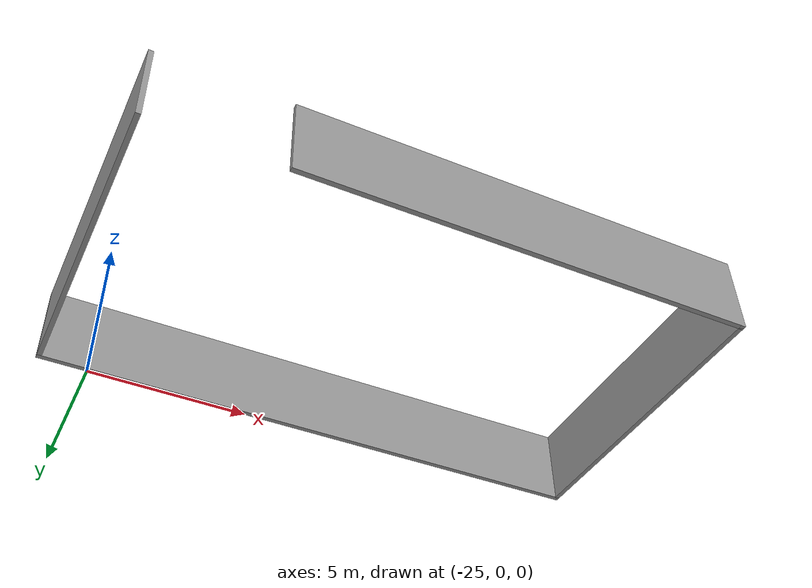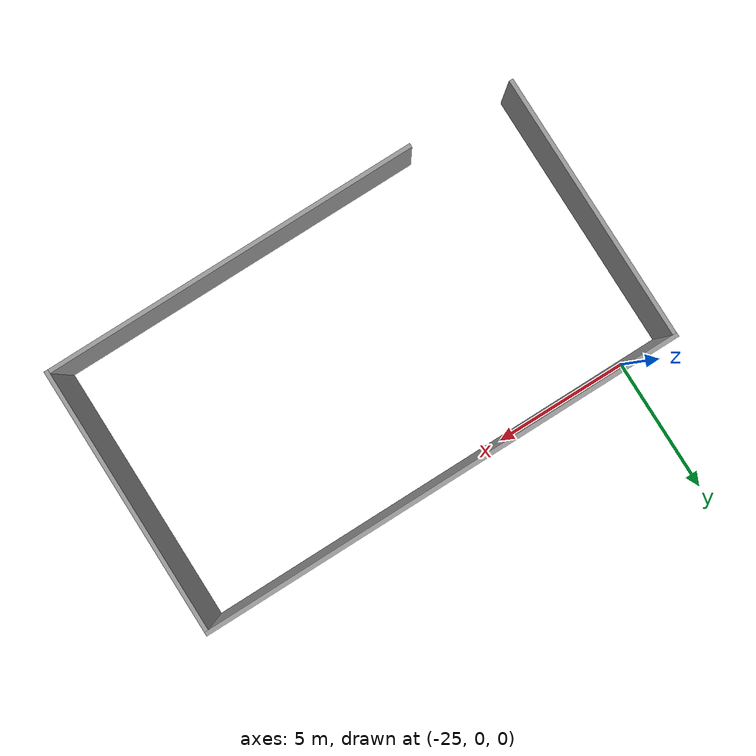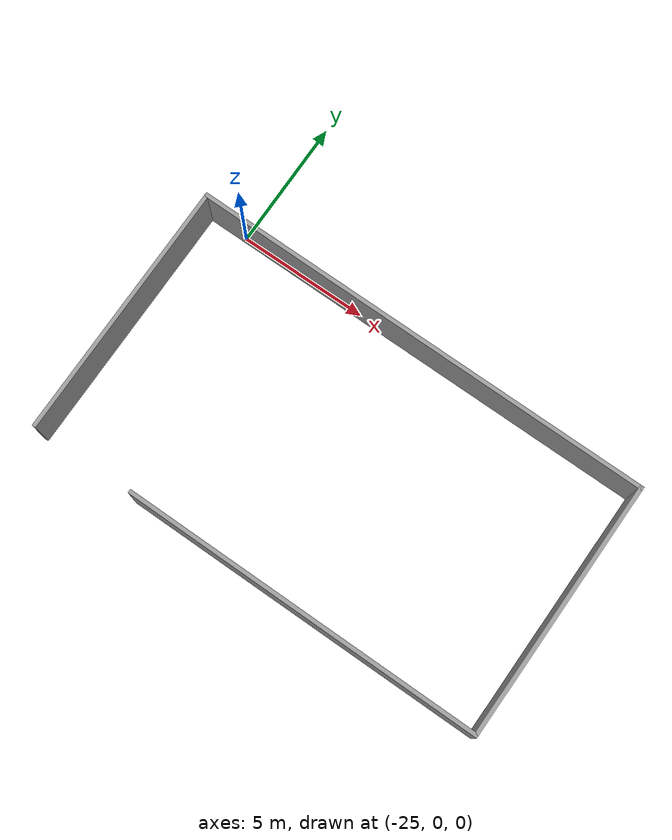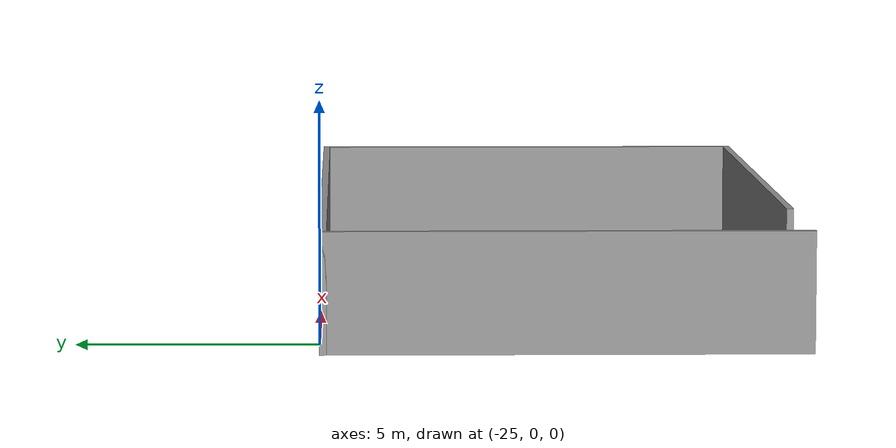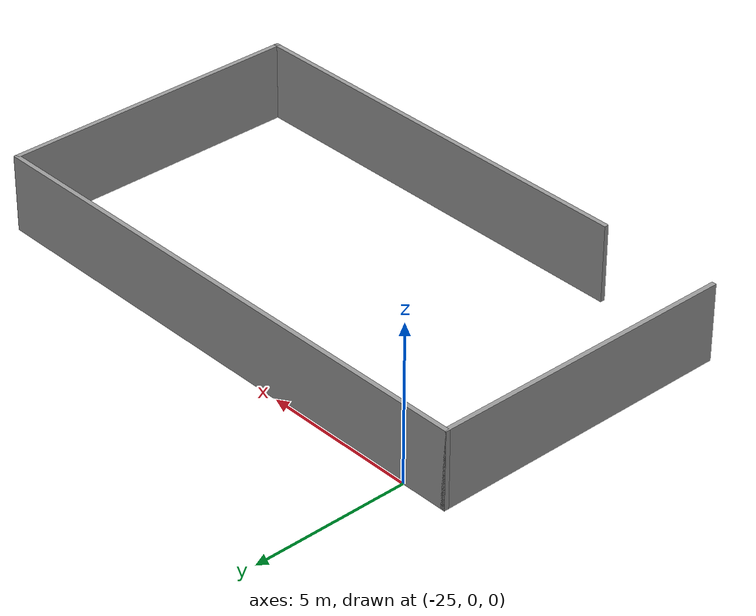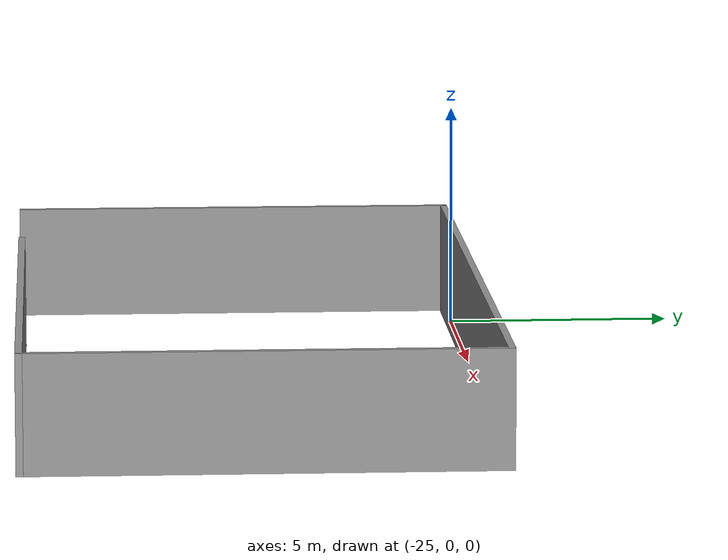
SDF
<?xml version='1.0'?>
<sdf version='1.7'>
  <model name='test_world'>
    <pose>-13.2731 -4.99126 0 0 -0 0</pose>
    <link name='Wall_10'>
      <collision name='Wall_10_Collision'>
        <geometry>
          <box>
            <size>14 0.15 2.5</size>
          </box>
        </geometry>
        <pose>0 0 1.25 0 -0 0</pose>
      </collision>
      <visual name='Wall_10_Visual'>
        <pose>0 0 1.25 0 -0 0</pose>
        <geometry>
          <box>
            <size>14 0.15 2.5</size>
          </box>
        </geometry>
        <material>
          <script>
            <uri>file://media/materials/scripts/gazebo.material</uri>
            <name>Gazebo/Grey</name>
          </script>
          <ambient>1 1 1 1</ambient>
        </material>
        <meta>
          <layer>0</layer>
        </meta>
      </visual>
      <pose>-2.27312 -4.925 0 0 -0 3.14159</pose>
    </link>
    <link name='Wall_7'>
      <collision name='Wall_7_Collision'>
        <geometry>
          <box>
            <size>10 0.15 2.5</size>
          </box>
        </geometry>
        <pose>0 0 1.25 0 -0 0</pose>
      </collision>
      <visual name='Wall_7_Visual'>
        <pose>0 0 1.25 0 -0 0</pose>
        <geometry>
          <box>
            <size>10 0.15 2.5</size>
          </box>
        </geometry>
        <material>
          <script>
            <uri>file://media/materials/scripts/gazebo.material</uri>
            <name>Gazebo/Grey</name>
          </script>
          <ambient>1 1 1 1</ambient>
        </material>
        <meta>
          <layer>0</layer>
        </meta>
      </visual>
      <pose>-13.1981 0 0 0 -0 1.5708</pose>
    </link>
    <link name='Wall_8'>
      <collision name='Wall_8_Collision'>
        <geometry>
          <box>
            <size>18 0.15 2.5</size>
          </box>
        </geometry>
        <pose>0 0 1.25 0 -0 0</pose>
      </collision>
      <visual name='Wall_8_Visual'>
        <pose>0 0 1.25 0 -0 0</pose>
        <geometry>
          <box>
            <size>18 0.15 2.5</size>
          </box>
        </geometry>
        <material>
          <script>
            <uri>file://media/materials/scripts/gazebo.material</uri>
            <name>Gazebo/Grey</name>
          </script>
          <ambient>1 1 1 1</ambient>
        </material>
        <meta>
          <layer>0</layer>
        </meta>
      </visual>
      <pose>-4.27312 4.925 0 0 -0 0</pose>
    </link>
    <link name='Wall_9'>
      <collision name='Wall_9_Collision'>
        <geometry>
          <box>
            <size>10 0.15 2.5</size>
          </box>
        </geometry>
        <pose>0 0 1.25 0 -0 0</pose>
      </collision>
      <visual name='Wall_9_Visual'>
        <pose>0 0 1.25 0 -0 0</pose>
        <geometry>
          <box>
            <size>10 0.15 2.5</size>
          </box>
        </geometry>
        <material>
          <script>
            <uri>file://media/materials/scripts/gazebo.material</uri>
            <name>Gazebo/Grey</name>
          </script>
          <ambient>1 1 1 1</ambient>
        </material>
        <meta>
          <layer>0</layer>
        </meta>
      </visual>
      <pose>4.65188 0 0 0 -0 -1.5708</pose>
    </link>
    <static>1</static>
  </model>
</sdf>
